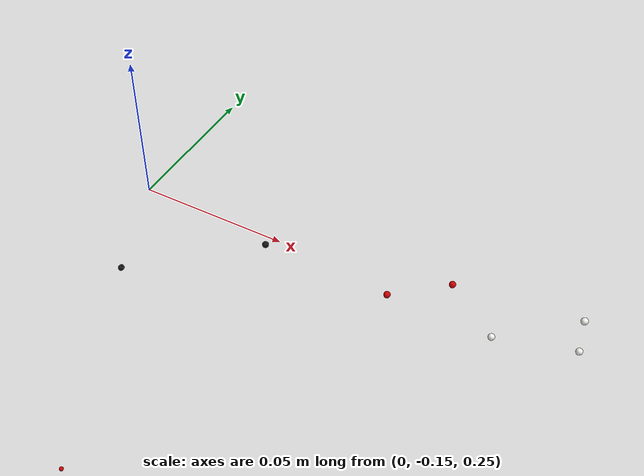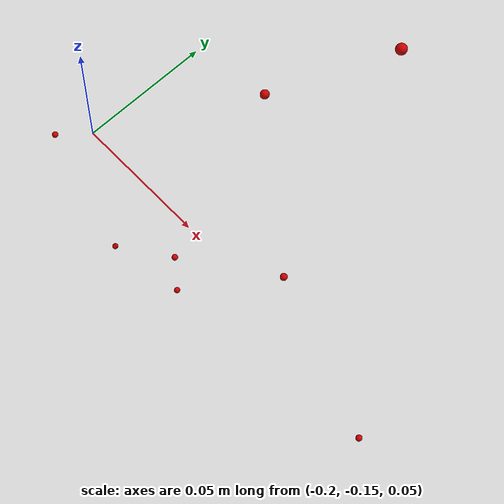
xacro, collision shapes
<?xml version="1.0" ?>
<robot xmlns:xacro="http://www.ros.org/wiki/xacro" name="lerobot_v1" version="1.0">
  <!--  color parameters -->
  <xacro:arg name="color_red" default="0.815686 0.0 0.0 1.0"/>
  <xacro:arg name="color_white" default="0.945098 0.949020 0.921569 1.0"/>
  <xacro:arg name="color_black" default="0.074510 0.074510 0.074510 1.0"/>
  <xacro:arg name="color_dark_gray" default="0.109804 0.113725 0.129412 1.0"/>
  <!-- World frame -->
  <link name="world"/>
  <!-- Link base -->
  <link name="base">
    <inertial>
      <origin xyz="-0.14932 -0.16812 0.065966" rpy="0 0 0"/>
      <mass value="0.147"/>
      <inertia ixx="0.000114686" ixy="-4.59787e-07" ixz="4.97151e-06" iyy="0.000136117" iyz="9.75275e-08" izz="0.000130364"/>
    </inertial>
    <!-- Part base_motor_holder_so101_v1 -->
    <visual>
      <origin xyz="-0.169402 -0.168167 0.0300817" rpy="1.5708 -1.67685e-15 1.5708"/>
      <geometry>
        <mesh filename="package://lerobot_description/meshes/base_motor_holder_so101_v1.stl"/>
      </geometry>
      <material name="base_motor_holder_so101_v1_material">
        <color rgba="$(arg color_red)"/>
      </material>
    </visual>
    <collision>
      <origin xyz="-0.169402 -0.168167 0.0300817" rpy="1.5708 -1.67685e-15 1.5708"/>
      <geometry>
        <sphere radius="0.001"/>
      </geometry>
    </collision>
    <!-- Part base_so101_v2 -->
    <visual>
      <origin xyz="-0.169402 -0.168068 0.0300817" rpy="1.5708 -1.6144e-15 1.5708"/>
      <geometry>
        <mesh filename="package://lerobot_description/meshes/base_so101_v2.stl"/>
      </geometry>
      <material name="base_so101_v2_material">
        <color rgba="$(arg color_white)"/>
      </material>
    </visual>
    <collision>
      <origin xyz="-0.169402 -0.168068 0.0300817" rpy="1.5708 -1.6144e-15 1.5708"/>
      <geometry>
        <sphere radius="0.001"/>
      </geometry>
    </collision>
    <!-- Part sts3215_03a_v1 -->
    <visual>
      <origin xyz="-0.136702 -0.168068 0.0761817" rpy="-8.21148e-16 7.84513e-18 1.249e-15"/>
      <geometry>
        <mesh filename="package://lerobot_description/meshes/sts3215_03a_v1.stl"/>
      </geometry>
      <material name="sts3215_03a_v1_material">
        <color rgba="$(arg color_white)"/>
      </material>
    </visual>
    <collision>
      <origin xyz="-0.136702 -0.168068 0.0761817" rpy="-8.21148e-16 7.84513e-18 1.249e-15"/>
      <geometry>
        <sphere radius="0.001"/>
      </geometry>
    </collision>
    <!-- Part waveshare_mounting_plate_so101_v2 -->
    <visual>
      <origin xyz="-0.19402 -0.168267 0.0798817" rpy="1.5708 -1.35493e-14 1.5708"/>
      <geometry>
        <mesh filename="package://lerobot_description/meshes/waveshare_mounting_plate_so101_v2.stl"/>
      </geometry>
      <material name="waveshare_mounting_plate_so101_v2_material">
        <color rgba="$(arg color_red)"/>
      </material>
    </visual>
    <collision>
      <origin xyz="-0.19402 -0.168267 0.0798817" rpy="1.5708 -1.35493e-14 1.5708"/>
      <geometry>
        <sphere radius="0.001"/>
      </geometry>
    </collision>
  </link>
  <!-- Frame baseframe (dummy link + fixed joint) -->
  <link name="baseframe">
    <origin xyz="0 0 0" rpy="0 -0 0"/>
    <inertial>
      <origin xyz="0 0 0" rpy="0 0 0"/>
      <mass value="1e-9"/>
      <inertia ixx="1e-9" ixy="0" ixz="0" iyy="1e-9" iyz="0" izz="1e-9"/>
    </inertial>
  </link>
  <joint name="baseframe_frame" type="fixed">
    <origin xyz="-0.163038 -0.168068 0.0324817" rpy="1.6144e-15 7.84513e-18 1.33799e-15"/>
    <parent link="base"/>
    <child link="baseframe"/>
    <axis xyz="0 0 0"/>
  </joint>
  <!-- Link shoulder -->
  <link name="shoulder">
    <inertial>
      <origin xyz="-0.0307604 -1.66727e-05 -0.0252713" rpy="0 0 0"/>
      <mass value="0.100006"/>
      <inertia ixx="8.3759e-05" ixy="7.55525e-08" ixz="-1.16342e-06" iyy="8.10403e-05" iyz="1.54663e-07" izz="2.39783e-05"/>
    </inertial>
    <!-- Part sts3215_03a_v1_2 -->
    <visual>
      <origin xyz="-0.0303992 0.000422241 -0.0417" rpy="1.5708 1.5708 0"/>
      <geometry>
        <mesh filename="package://lerobot_description/meshes/sts3215_03a_v1.stl"/>
      </geometry>
      <material name="sts3215_03a_v1_2_material">
        <color rgba="$(arg color_red)"/>
      </material>
    </visual>
    <collision>
      <origin xyz="-0.0303992 0.000422241 -0.0417" rpy="1.5708 1.5708 0"/>
      <geometry>
        <sphere radius="0.001"/>
      </geometry>
    </collision>
    <!-- Part motor_holder_so101_base_v1 -->
    <visual>
      <origin xyz="-0.0675992 -0.000177759 0.0158499" rpy="1.5708 -1.5708 0"/>
      <geometry>
        <mesh filename="package://lerobot_description/meshes/motor_holder_so101_base_v1.stl"/>
      </geometry>
      <material name="motor_holder_so101_base_v1_material">
        <color rgba="$(arg color_white)"/>
      </material>
    </visual>
    <collision>
      <origin xyz="-0.0675992 -0.000177759 0.0158499" rpy="1.5708 -1.5708 0"/>
      <geometry>
        <sphere radius="0.001"/>
      </geometry>
    </collision>
    <!-- Part rotation_pitch_so101_v1 -->
    <visual>
      <origin xyz="0.0122008 2.22413e-05 0.0464" rpy="-1.5708 2.35221e-33 0"/>
      <geometry>
        <mesh filename="package://lerobot_description/meshes/rotation_pitch_so101_v1.stl"/>
      </geometry>
      <material name="rotation_pitch_so101_v1_material">
        <color rgba="$(arg color_red)"/>
      </material>
    </visual>
    <collision>
      <origin xyz="0.0122008 2.22413e-05 0.0464" rpy="-1.5708 2.35221e-33 0"/>
      <geometry>
        <sphere radius="0.001"/>
      </geometry>
    </collision>
  </link>
  <!-- Link upper_arm -->
  <link name="upper_arm">
    <inertial>
      <origin xyz="-0.0898471 -0.00838224 0.0184089" rpy="0 0 0"/>
      <mass value="0.103"/>
      <inertia ixx="4.08002e-05" ixy="-1.97819e-05" ixz="-4.03016e-08" iyy="0.000147318" iyz="8.97326e-09" izz="0.000142487"/>
    </inertial>
    <!-- Part sts3215_03a_v1_3 -->
    <visual>
      <origin xyz="-0.11257 -0.0155 0.0187" rpy="-3.14159 -5.27356e-16 -1.5708"/>
      <geometry>
        <mesh filename="package://lerobot_description/meshes/sts3215_03a_v1.stl"/>
      </geometry>
      <material name="sts3215_03a_v1_3_material">
        <!-- red -->
        <color rgba="$(arg color_red)"/>
      </material>
    </visual>
    <collision>
      <origin xyz="-0.11257 -0.0155 0.0187" rpy="-3.14159 -5.27356e-16 -1.5708"/>
      <geometry>
        <sphere radius="0.001"/>
      </geometry>
    </collision>
    <!-- Part upper_arm_so101_v1 -->
    <visual>
      <origin xyz="-0.065085 0.012 0.0182" rpy="3.14159 -0 -1.30911e-30"/>
      <geometry>
        <mesh filename="package://lerobot_description/meshes/upper_arm_so101_v1.stl"/>
      </geometry>
      <material name="upper_arm_so101_v1_material">
        <!-- black -->
        <color rgba="$(arg color_black)"/>
      </material>
    </visual>
    <collision>
      <origin xyz="-0.065085 0.012 0.0182" rpy="3.14159 -0 -1.30911e-30"/>
      <geometry>
        <sphere radius="0.001"/>
      </geometry>
    </collision>
  </link>
  <!-- Link lower_arm -->
  <link name="lower_arm">
    <inertial>
      <origin xyz="-0.0980701 0.00324376 0.0182831" rpy="0 0 0"/>
      <mass value="0.104"/>
      <inertia ixx="2.87438e-05" ixy="7.41152e-06" ixz="1.26409e-06" iyy="0.000159844" iyz="-4.90188e-08" izz="0.00014529"/>
    </inertial>
    <!-- Part under_arm_so101_v1 -->
    <visual>
      <origin xyz="-0.0648499 -0.032 0.0182" rpy="3.14159 -0 6.67202e-31"/>
      <geometry>
        <mesh filename="package://lerobot_description/meshes/under_arm_so101_v1.stl"/>
      </geometry>
      <material name="under_arm_so101_v1_material">
        <!-- black -->
        <color rgba="$(arg color_black)"/>
      </material>
    </visual>
    <collision>
      <origin xyz="-0.0648499 -0.032 0.0182" rpy="3.14159 -0 6.67202e-31"/>
      <geometry>
        <sphere radius="0.001"/>
      </geometry>
    </collision>
    <!-- Part motor_holder_so101_wrist_v1 -->
    <visual>
      <origin xyz="-0.0648499 -0.032 0.018" rpy="-3.14159 -2.55351e-15 -2.56146e-31"/>
      <geometry>
        <mesh filename="package://lerobot_description/meshes/motor_holder_so101_wrist_v1.stl"/>
      </geometry>
      <material name="motor_holder_so101_wrist_v1_material">
        <!-- red -->
        <color rgba="$(arg color_red)"/>
      </material>
    </visual>
    <collision>
      <origin xyz="-0.0648499 -0.032 0.018" rpy="-3.14159 -2.55351e-15 -2.56146e-31"/>
      <geometry>
        <sphere radius="0.001"/>
      </geometry>
    </collision>
    <!-- Part sts3215_03a_v1_4 -->
    <visual>
      <origin xyz="-0.1224 0.0052 0.0187" rpy="-3.14159 -7.88861e-31 -3.14159"/>
      <geometry>
        <mesh filename="package://lerobot_description/meshes/sts3215_03a_v1.stl"/>
      </geometry>
      <material name="sts3215_03a_v1_4_material">
        <!-- black -->
        <color rgba="$(arg color_dark_gray)"/>
      </material>
    </visual>
    <collision>
      <origin xyz="-0.1224 0.0052 0.0187" rpy="-3.14159 -7.88861e-31 -3.14159"/>
      <geometry>
        <sphere radius="0.001"/>
      </geometry>
    </collision>
  </link>
  <!-- Link wrist -->
  <link name="wrist">
    <inertial>
      <origin xyz="-0.000103312 -0.0386143 0.0281156" rpy="0 0 0"/>
      <mass value="0.079"/>
      <inertia ixx="3.68263e-05" ixy="1.7893e-08" ixz="-5.28128e-08" iyy="2.5391e-05" iyz="3.6412e-06" izz="2.1e-05"/>
    </inertial>
    <!-- Part sts3215_03a_no_horn_v1 -->
    <visual>
      <origin xyz="5.55112e-17 -0.0424 0.0306" rpy="1.5708 1.5708 0"/>
      <geometry>
        <mesh filename="package://lerobot_description/meshes/sts3215_03a_no_horn_v1.stl"/>
      </geometry>
      <material name="sts3215_03a_no_horn_v1_material">
        <!-- red -->
        <color rgba="$(arg color_red)"/>
      </material>
    </visual>
    <collision>
      <origin xyz="5.55112e-17 -0.0424 0.0306" rpy="1.5708 1.5708 0"/>
      <geometry>
        <sphere radius="0.001"/>
      </geometry>
    </collision>
    <!-- Part wrist_roll_pitch_so101_v2 -->
    <visual>
      <origin xyz="0 -0.028 0.0181" rpy="-1.5708 -1.5708 0"/>
      <geometry>
        <mesh filename="package://lerobot_description/meshes/wrist_roll_pitch_so101_v2.stl"/>
      </geometry>
      <material name="wrist_roll_pitch_so101_v2_material">
        <!-- white -->
        <color rgba="$(arg color_white)"/>
      </material>
    </visual>
    <collision>
      <origin xyz="0 -0.028 0.0181" rpy="-1.5708 -1.5708 0"/>
      <geometry>
        <sphere radius="0.001"/>
      </geometry>
    </collision>
  </link>
  <!-- Link gripper -->
  <link name="gripper">
    <inertial>
      <origin xyz="0.000213627 0.000245138 -0.025187" rpy="0 0 0"/>
      <mass value="0.087"/>
      <inertia ixx="2.75087e-05" ixy="-3.35241e-07" ixz="-5.7352e-06" iyy="4.33657e-05" iyz="-5.17847e-08" izz="3.45059e-05"/>
    </inertial>
    <!-- Part sts3215_03a_v1_5 -->
    <visual>
      <origin xyz="0.0077 0.0001 -0.0234" rpy="-1.5708 -5.19179e-17 -1.66533e-16"/>
      <geometry>
        <mesh filename="package://lerobot_description/meshes/sts3215_03a_v1.stl"/>
      </geometry>
      <material name="sts3215_03a_v1_5_material">
        <!-- white -->
        <color rgba="$(arg color_white)"/>
      </material>
    </visual>
    <collision>
      <origin xyz="0.0077 0.0001 -0.0234" rpy="-1.5708 -5.19179e-17 -1.66533e-16"/>
      <geometry>
        <sphere radius="0.001"/>
      </geometry>
    </collision>
    <!-- Part wrist_roll_follower_so101_v1 -->
    <visual>
      <origin xyz="0 -0.000218214 0.000949706" rpy="-3.14159 -5.55112e-17 0"/>
      <geometry>
        <mesh filename="package://lerobot_description/meshes/wrist_roll_follower_so101_v1.stl"/>
      </geometry>
      <material name="wrist_roll_follower_so101_v1_material">
        <!-- white -->
        <color rgba="$(arg color_white)"/>
      </material>
    </visual>
    <collision>
      <origin xyz="0 -0.000218214 0.000949706" rpy="-3.14159 -5.55112e-17 0"/>
      <geometry>
        <sphere radius="0.001"/>
      </geometry>
    </collision>
  </link>
  <!-- Frame gripperframe (dummy link + fixed joint) -->
  <link name="gripperframe">
    <origin xyz="0 0 0" rpy="0 -0 0"/>
    <inertial>
      <origin xyz="0 0 0" rpy="0 0 0"/>
      <mass value="1e-9"/>
      <inertia ixx="1e-9" ixy="0" ixz="0" iyy="1e-9" iyz="0" izz="1e-9"/>
    </inertial>
  </link>
  <joint name="gripperframe_frame" type="fixed">
    <origin xyz="-0.0079 -0.000218121 -0.0981274" rpy="-0 1.5708 0"/>
    <parent link="gripper"/>
    <child link="gripperframe"/>
    <axis xyz="0 0 0"/>
  </joint>
  <!-- Link moving_jaw_so101_v1 -->
  <link name="moving_jaw_so101_v1">
    <inertial>
      <origin xyz="-0.00157495 -0.0300244 0.0192755" rpy="0 0 0"/>
      <mass value="0.012"/>
      <inertia ixx="6.61427e-06" ixy="-3.19807e-07" ixz="-5.90717e-09" iyy="1.89032e-06" iyz="-1.09945e-07" izz="5.28738e-06"/>
    </inertial>
    <!-- Part moving_jaw_so101_v1 -->
    <visual>
      <origin xyz="-5.55112e-17 0 0.0189" rpy="9.53145e-17 6.93889e-18 1.24077e-24"/>
      <geometry>
        <mesh filename="package://lerobot_description/meshes/moving_jaw_so101_v1.stl"/>
      </geometry>
      <material name="moving_jaw_so101_v1_material">
        <!-- white -->
        <color rgba="$(arg color_white)"/>
      </material>
    </visual>
    <collision>
      <origin xyz="-5.55112e-17 0 0.0189" rpy="9.53145e-17 6.93889e-18 1.24077e-24"/>
      <geometry>
        <sphere radius="0.001"/>
      </geometry>
    </collision>
  </link>
  <!-- Joint from gripper to moving_jaw_so101_v1 -->
  <joint name="6" type="revolute">
    <origin xyz="0.0202 0.0188 -0.0234" rpy="1.5708 -5.24284e-08 -1.41553e-15"/>
    <parent link="gripper"/>
    <child link="moving_jaw_so101_v1"/>
    <axis xyz="0 0 1"/>
    <limit effort="10" velocity="10" lower="-0.174533" upper="1.74533"/>
    <dynamics damping="0.5" friction="0.1"/>
  </joint>
  <!-- Joint from wrist to gripper -->
  <joint name="5" type="revolute">
    <origin xyz="2.77556e-16 -0.0611 0.0181" rpy="1.5708 0.0486795 3.14159"/>
    <parent link="wrist"/>
    <child link="gripper"/>
    <axis xyz="0 0 1"/>
    <limit effort="10" velocity="10" lower="-2.74385" upper="2.84121"/>
    <dynamics damping="0.5" friction="0.1"/>
  </joint>
  <!-- Joint from lower_arm to wrist -->
  <joint name="4" type="revolute">
    <origin xyz="-0.1349 0.0052 8.44651e-17" rpy="4.02456e-15 8.67362e-16 -1.5708"/>
    <parent link="lower_arm"/>
    <child link="wrist"/>
    <axis xyz="0 0 1"/>
    <limit effort="10" velocity="10" lower="-1.65806" upper="1.65806"/>
    <dynamics damping="0.5" friction="0.1"/>
  </joint>
  <!-- Joint from upper_arm to lower_arm -->
  <joint name="3" type="revolute">
    <origin xyz="-0.11257 -0.028 2.09886e-16" rpy="-3.63608e-16 8.74301e-16 1.5708"/>
    <parent link="upper_arm"/>
    <child link="lower_arm"/>
    <axis xyz="0 0 1"/>
    <limit effort="10" velocity="10" lower="-1.74533" upper="1.5708"/>
    <dynamics damping="0.5" friction="0.1"/>
  </joint>
  <!-- Joint from shoulder to upper_arm -->
  <joint name="2" type="revolute">
    <origin xyz="-0.0303992 -0.0182778 -0.0542" rpy="-1.5708 -1.5708 0"/>
    <parent link="shoulder"/>
    <child link="upper_arm"/>
    <axis xyz="0 0 1"/>
    <limit effort="10" velocity="10" lower="-1.74533" upper="1.74533"/>
    <dynamics damping="0.5" friction="0.1"/>
  </joint>
  <!-- Joint from base to shoulder -->
  <joint name="1" type="revolute">
    <origin xyz="-0.124202 -0.168068 0.0948817" rpy="3.14159 4.18253e-17 -3.14159"/>
    <parent link="base"/>
    <child link="shoulder"/>
    <axis xyz="0 0 1"/>
    <limit effort="10" velocity="10" lower="-1.91986" upper="1.91986"/>
    <dynamics damping="0.5" friction="0.1"/>
  </joint>
  <!-- Fixed joint between world and robot base -->
  <joint name="world_base_joint" type="fixed">
    <parent link="world"/>
    <child link="base"/>
  </joint>
  <!-- Control interface -->
  <xacro:include filename="$(find lerobot_gazebo_plugins)/urdf/lerobot_control.xacro"/>

</robot>
